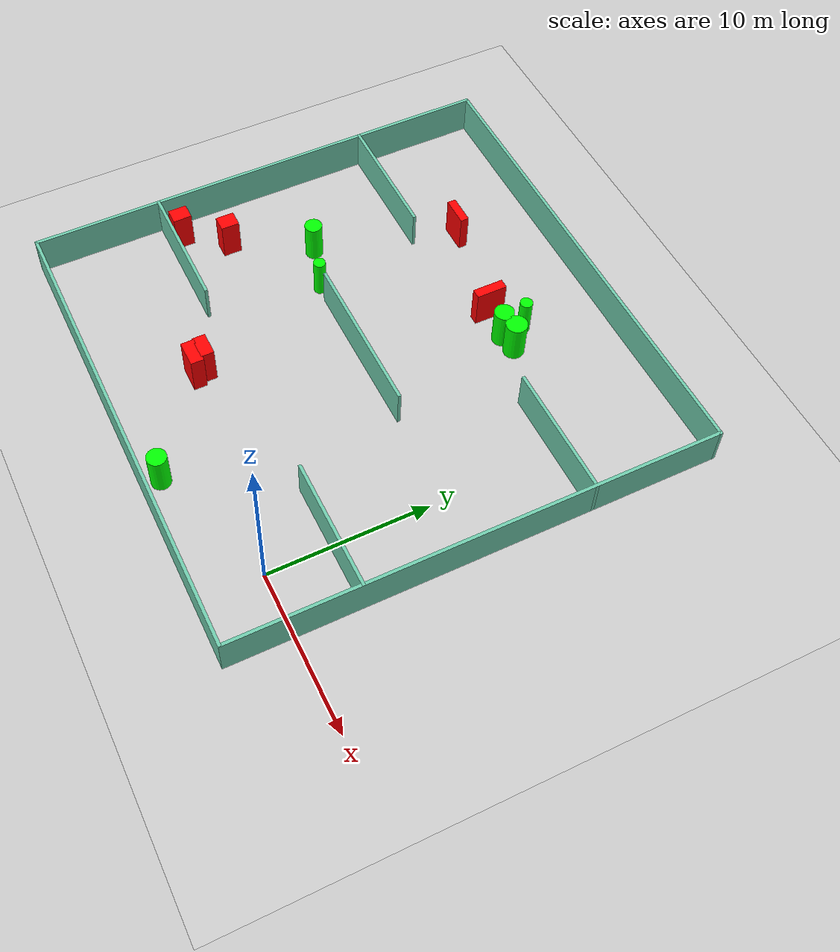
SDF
<sdf version="1.7">
 <world name="default">
  <light name="sun" type="directional">
   <pose>0 0 10 0 -0 0</pose>
   <diffuse>0.8 0.8 0.8 1</diffuse>
   <specular>0.2 0.2 0.2 1</specular>
   <attenuation>
    <range>1000</range>
    <constant>0.9</constant>
    <linear>0.01</linear>
    <quadratic>0.001</quadratic>
   </attenuation>
   <direction>-0.5 0.1 -0.9</direction>
   <spot><inner_angle>0</inner_angle><outer_angle>0</outer_angle><falloff>0</falloff></spot>
  </light>
  <model name="ground_plane">
   <static>1</static>
   <link name="link">
    <collision name="collision">
     <geometry><plane><normal>0 0 1</normal><size>100 100</size></plane></geometry>
     <surface>
      <contact><collide_bitmask>65535</collide_bitmask></contact>
      <friction><ode><mu>100</mu><mu2>50</mu2></ode></friction>
     </surface>
    </collision>
    <visual name="visual">
     <cast_shadows>0</cast_shadows>
     <geometry><plane><normal>0 0 1</normal><size>100 100</size></plane></geometry>
     <material>
      <script><uri>file://media/materials/scripts/gazebo.material</uri><name>Gazebo/Grey</name></script>
     </material>
    </visual>
   </link>
  </model>
  <gravity>0 0 -9.8</gravity>
  <magnetic_field>6e-06 2.3e-05 -4.2e-05</magnetic_field>
  <atmosphere type="adiabatic"/>
  <physics type="ode">
   <max_step_size>0.001</max_step_size>
   <real_time_factor>1</real_time_factor>
   <real_time_update_rate>1000</real_time_update_rate>
  </physics>
  <scene><ambient>0.4 0.4 0.4 1</ambient><background>0.7 0.7 0.7 1</background><shadows>1</shadows></scene>
  <spherical_coordinates>
   <surface_model>EARTH_WGS84</surface_model>
   <latitude_deg>0</latitude_deg>
   <longitude_deg>0</longitude_deg>
   <elevation>0</elevation>
   <heading_deg>0</heading_deg>
  </spherical_coordinates>
  <model name="my_base_walls">
   <link name="Wall_10">
    <collision name="Wall_10_Collision">
     <geometry><box><size>8.2 0.2 2.5</size></box></geometry>
     <pose>0 0 1.25 0 -0 0</pose>
    </collision>
    <visual name="Wall_10_Visual">
     <pose>0 0 1.25 0 -0 0</pose>
     <geometry><box><size>8.2 0.2 2.5</size></box></geometry>
     <material>
      <script><uri>file://media/materials/scripts/gazebo.material</uri><name>Gazebo/Grey</name></script>
      <ambient>0.435294 0.796078 0.67451 1</ambient>
     </material>
     <meta><layer>0</layer></meta>
    </visual>
    <pose>-11 -7 0 0 -0 0</pose>
   </link>
   <link name="Wall_12">
    <collision name="Wall_12_Collision">
     <geometry><box><size>8.2 0.2 2.5</size></box></geometry>
     <pose>0 0 1.25 0 -0 0</pose>
    </collision>
    <visual name="Wall_12_Visual">
     <pose>0 0 1.25 0 -0 0</pose>
     <geometry><box><size>8.2 0.2 2.5</size></box></geometry>
     <material>
      <script><uri>file://media/materials/scripts/gazebo.material</uri><name>Gazebo/Grey</name></script>
      <ambient>0.435294 0.796078 0.67451 1</ambient>
     </material>
     <meta><layer>0</layer></meta>
    </visual>
    <pose>-11 7 0 0 -0 0</pose>
   </link>
   <link name="Wall_14">
    <collision name="Wall_14_Collision">
     <geometry><box><size>8.2 0.2 2.5</size></box></geometry>
     <pose>0 0 1.25 0 -0 0</pose>
    </collision>
    <visual name="Wall_14_Visual">
     <pose>0 0 1.25 0 -0 0</pose>
     <geometry><box><size>8.2 0.2 2.5</size></box></geometry>
     <material>
      <script><uri>file://media/materials/scripts/gazebo.material</uri><name>Gazebo/Grey</name></script>
      <ambient>0.435294 0.796078 0.67451 1</ambient>
     </material>
     <meta><layer>0</layer></meta>
    </visual>
    <pose>11 7 0 0 -0 3.14159</pose>
   </link>
   <link name="Wall_16">
    <collision name="Wall_16_Collision">
     <geometry><box><size>10.2 0.2 2.5</size></box></geometry>
     <pose>0 0 1.25 0 -0 0</pose>
    </collision>
    <visual name="Wall_16_Visual">
     <pose>0 0 1.25 0 -0 0</pose>
     <geometry><box><size>10.2 0.2 2.5</size></box></geometry>
     <material>
      <script><uri>file://media/materials/scripts/gazebo.material</uri><name>Gazebo/Grey</name></script>
      <ambient>0.435294 0.796078 0.67451 1</ambient>
     </material>
     <meta><layer>0</layer></meta>
    </visual>
    <pose>0 0 0 0 -0 3.14159</pose>
   </link>
   <link name="Wall_2">
    <collision name="Wall_2_Collision">
     <geometry><box><size>30.2 0.2 2.5</size></box></geometry>
     <pose>0 0 1.25 0 -0 0</pose>
    </collision>
    <visual name="Wall_2_Visual">
     <pose>0 0 1.25 0 -0 0</pose>
     <geometry><box><size>30.2 0.2 2.5</size></box></geometry>
     <material>
      <script><uri>file://media/materials/scripts/gazebo.material</uri><name>Gazebo/Grey</name></script>
      <ambient>0.435294 0.796078 0.67451 1</ambient>
     </material>
     <meta><layer>0</layer></meta>
    </visual>
    <pose>0 -15 0 0 -0 3.14159</pose>
   </link>
   <link name="Wall_3">
    <collision name="Wall_3_Collision">
     <geometry><box><size>30.2 0.2 2.5</size></box></geometry>
     <pose>0 0 1.25 0 -0 0</pose>
    </collision>
    <visual name="Wall_3_Visual">
     <pose>0 0 1.25 0 -0 0</pose>
     <geometry><box><size>30.2 0.2 2.5</size></box></geometry>
     <material>
      <script><uri>file://media/materials/scripts/gazebo.material</uri><name>Gazebo/Grey</name></script>
      <ambient>0.435294 0.796078 0.67451 1</ambient>
     </material>
     <meta><layer>0</layer></meta>
    </visual>
    <pose>-15 0 0 0 -0 1.5708</pose>
   </link>
   <link name="Wall_4">
    <collision name="Wall_4_Collision">
     <geometry><box><size>30.2 0.2 2.5</size></box></geometry>
     <pose>0 0 1.25 0 -0 0</pose>
    </collision>
    <visual name="Wall_4_Visual">
     <pose>0 0 1.25 0 -0 0</pose>
     <geometry><box><size>30.2 0.2 2.5</size></box></geometry>
     <material>
      <script><uri>file://media/materials/scripts/gazebo.material</uri><name>Gazebo/Grey</name></script>
      <ambient>0.435294 0.796078 0.67451 1</ambient>
     </material>
     <meta><layer>0</layer></meta>
    </visual>
    <pose>0 15 0 0 -0 0</pose>
   </link>
   <link name="Wall_6">
    <collision name="Wall_6_Collision">
     <geometry><box><size>30.2 0.2 2.5</size></box></geometry>
     <pose>0 0 1.25 0 -0 0</pose>
    </collision>
    <visual name="Wall_6_Visual">
     <pose>0 0 1.25 0 -0 0</pose>
     <geometry><box><size>30.2 0.2 2.5</size></box></geometry>
     <material>
      <script><uri>file://media/materials/scripts/gazebo.material</uri><name>Gazebo/Grey</name></script>
      <ambient>0.435294 0.796078 0.67451 1</ambient>
     </material>
     <meta><layer>0</layer></meta>
    </visual>
    <pose>15 0 0 0 -0 1.5708</pose>
   </link>
   <link name="Wall_8">
    <collision name="Wall_8_Collision">
     <geometry><box><size>8.2 0.2 2.5</size></box></geometry>
     <pose>0 0 1.25 0 -0 0</pose>
    </collision>
    <visual name="Wall_8_Visual">
     <pose>0 0 1.25 0 -0 0</pose>
     <geometry><box><size>8.2 0.2 2.5</size></box></geometry>
     <material>
      <script><uri>file://media/materials/scripts/gazebo.material</uri><name>Gazebo/Grey</name></script>
      <ambient>0.435294 0.796078 0.67451 1</ambient>
     </material>
     <meta><layer>0</layer></meta>
    </visual>
    <pose>11 -7 0 0 -0 3.14159</pose>
   </link>
   <static>1</static>
   <pose>-11 11 0 0 -0 0</pose>
  </model>
  <model name="cylinder1">
   <static>1</static>
   <link name="link">
    <inertial>
     <mass>1</mass>
     <inertia><ixx>0.5</ixx><ixy>0</ixy><ixz>0</ixz><iyy>0.5</iyy><iyz>0</iyz><izz>1</izz></inertia>
    </inertial>
    <collision name="collision">
     <geometry><cylinder><radius>0.6082916704889512</radius><length>2.5</length></cylinder></geometry>
    </collision>
    <visual name="visual">
     <geometry><cylinder><radius>0.6082916704889512</radius><length>2.5</length></cylinder></geometry>
     <material>
      <ambient>0 1 0 1</ambient>
      <diffuse>0 1 0 1</diffuse>
      <specular>0.1 0.1 0.1 1</specular>
      <emissive>0 0 0 0</emissive>
     </material>
    </visual>
   </link>
   <pose>-8.74481914443671 19.354311901377862 1.25 0 0 0</pose>
  </model>
  <model name="cylinder2">
   <static>1</static>
   <link name="link">
    <inertial>
     <mass>1</mass>
     <inertia><ixx>0.5</ixx><ixy>0</ixy><ixz>0</ixz><iyy>0.5</iyy><iyz>0</iyz><izz>1</izz></inertia>
    </inertial>
    <collision name="collision">
     <geometry><cylinder><radius>0.5489122078826771</radius><length>2.5</length></cylinder></geometry>
    </collision>
    <visual name="visual">
     <geometry><cylinder><radius>0.5489122078826771</radius><length>2.5</length></cylinder></geometry>
     <material>
      <ambient>0 1 0 1</ambient>
      <diffuse>0 1 0 1</diffuse>
      <specular>0.1 0.1 0.1 1</specular>
      <emissive>0 0 0 0</emissive>
     </material>
    </visual>
   </link>
   <pose>-19.969951544026603 11.988273499306672 1.25 0 0 0</pose>
  </model>
  <model name="cylinder3">
   <static>1</static>
   <link name="link">
    <inertial>
     <mass>1</mass>
     <inertia><ixx>0.5</ixx><ixy>0</ixy><ixz>0</ixz><iyy>0.5</iyy><iyz>0</iyz><izz>1</izz></inertia>
    </inertial>
    <collision name="collision">
     <geometry><cylinder><radius>0.39114445023242833</radius><length>2.5</length></cylinder></geometry>
    </collision>
    <visual name="visual">
     <geometry><cylinder><radius>0.39114445023242833</radius><length>2.5</length></cylinder></geometry>
     <material>
      <ambient>0 1 0 1</ambient>
      <diffuse>0 1 0 1</diffuse>
      <specular>0.1 0.1 0.1 1</specular>
      <emissive>0 0 0 0</emissive>
     </material>
    </visual>
   </link>
   <pose>-8.818385246635172 20.889850699447866 1.25 0 0 0</pose>
  </model>
  <model name="cylinder4">
   <static>1</static>
   <link name="link">
    <inertial>
     <mass>1</mass>
     <inertia><ixx>0.5</ixx><ixy>0</ixy><ixz>0</ixz><iyy>0.5</iyy><iyz>0</iyz><izz>1</izz></inertia>
    </inertial>
    <collision name="collision">
     <geometry><cylinder><radius>0.379070777030169</radius><length>2.5</length></cylinder></geometry>
    </collision>
    <visual name="visual">
     <geometry><cylinder><radius>0.379070777030169</radius><length>2.5</length></cylinder></geometry>
     <material>
      <ambient>0 1 0 1</ambient>
      <diffuse>0 1 0 1</diffuse>
      <specular>0.1 0.1 0.1 1</specular>
      <emissive>0 0 0 0</emissive>
     </material>
    </visual>
   </link>
   <pose>-17.017674316954682 11.058275454314254 1.25 0 0 0</pose>
  </model>
  <model name="cylinder5">
   <static>1</static>
   <link name="link">
    <inertial>
     <mass>1</mass>
     <inertia><ixx>0.5</ixx><ixy>0</ixy><ixz>0</ixz><iyy>0.5</iyy><iyz>0</iyz><izz>1</izz></inertia>
    </inertial>
    <collision name="collision">
     <geometry><cylinder><radius>0.5967671325556281</radius><length>2.5</length></cylinder></geometry>
    </collision>
    <visual name="visual">
     <geometry><cylinder><radius>0.5967671325556281</radius><length>2.5</length></cylinder></geometry>
     <material>
      <ambient>0 1 0 1</ambient>
      <diffuse>0 1 0 1</diffuse>
      <specular>0.1 0.1 0.1 1</specular>
      <emissive>0 0 0 0</emissive>
     </material>
    </visual>
   </link>
   <pose>-7.960314919820966 -2.8872858553125678 1.25 0 0 0</pose>
  </model>
  <model name="cylinder6">
   <static>1</static>
   <link name="link">
    <inertial>
     <mass>1</mass>
     <inertia><ixx>0.5</ixx><ixy>0</ixy><ixz>0</ixz><iyy>0.5</iyy><iyz>0</iyz><izz>1</izz></inertia>
    </inertial>
    <collision name="collision">
     <geometry><cylinder><radius>0.6612179812362396</radius><length>2.5</length></cylinder></geometry>
    </collision>
    <visual name="visual">
     <geometry><cylinder><radius>0.6612179812362396</radius><length>2.5</length></cylinder></geometry>
     <material>
      <ambient>0 1 0 1</ambient>
      <diffuse>0 1 0 1</diffuse>
      <specular>0.1 0.1 0.1 1</specular>
      <emissive>0 0 0 0</emissive>
     </material>
    </visual>
   </link>
   <pose>-7.634653570820692 19.56858885349672 1.25 0 0 0</pose>
  </model>
  <model name="box1">
   <static>1</static>
   <link name="link">
    <inertial>
     <mass>1</mass>
     <inertia><ixx>0.083</ixx><ixy>0</ixy><ixz>0</ixz><iyy>0.083</iyy><iyz>0</iyz><izz>0.083</izz></inertia>
    </inertial>
    <collision name="collision">
     <geometry><box><size>0.9915480161803636 1.1719489812286845 2.5</size></box></geometry>
    </collision>
    <visual name="visual">
     <geometry><box><size>0.9915480161803636 1.1719489812286845 2.5</size></box></geometry>
     <material>
      <ambient>1 0 0 1</ambient>
      <diffuse>1 0 0 1</diffuse>
      <specular>0.1 0.1 0.1 1</specular>
      <emissive>0 0 0 0</emissive>
     </material>
    </visual>
    <sensor name="my_contact" type="contact">
     <contact><collision>box_collision</collision><topic>__default_topic__</topic></contact>
    </sensor>
   </link>
   <pose>-24.477326011708712 4.837214742430609 1.25 0 0 0</pose>
  </model>
  <model name="box2">
   <static>1</static>
   <link name="link">
    <inertial>
     <mass>1</mass>
     <inertia><ixx>0.083</ixx><ixy>0</ixy><ixz>0</ixz><iyy>0.083</iyy><iyz>0</iyz><izz>0.083</izz></inertia>
    </inertial>
    <collision name="collision">
     <geometry><box><size>1.7902941494245208 0.5299355928343211 2.5</size></box></geometry>
    </collision>
    <visual name="visual">
     <geometry><box><size>1.7902941494245208 0.5299355928343211 2.5</size></box></geometry>
     <material>
      <ambient>1 0 0 1</ambient>
      <diffuse>1 0 0 1</diffuse>
      <specular>0.1 0.1 0.1 1</specular>
      <emissive>0 0 0 0</emissive>
     </material>
    </visual>
    <sensor name="my_contact" type="contact">
     <contact><collision>box_collision</collision><topic>__default_topic__</topic></contact>
    </sensor>
   </link>
   <pose>-17.232910099889764 20.72790014398495 1.25 0 0 0</pose>
  </model>
  <model name="box3">
   <static>1</static>
   <link name="link">
    <inertial>
     <mass>1</mass>
     <inertia><ixx>0.083</ixx><ixy>0</ixy><ixz>0</ixz><iyy>0.083</iyy><iyz>0</iyz><izz>0.083</izz></inertia>
    </inertial>
    <collision name="collision">
     <geometry><box><size>1.6373843537991009 0.8215169589949238 2.5</size></box></geometry>
    </collision>
    <visual name="visual">
     <geometry><box><size>1.6373843537991009 0.8215169589949238 2.5</size></box></geometry>
     <material>
      <ambient>1 0 0 1</ambient>
      <diffuse>1 0 0 1</diffuse>
      <specular>0.1 0.1 0.1 1</specular>
      <emissive>0 0 0 0</emissive>
     </material>
    </visual>
    <sensor name="my_contact" type="contact">
     <contact><collision>box_collision</collision><topic>__default_topic__</topic></contact>
    </sensor>
   </link>
   <pose>-13.927266146838509 1.551659007401014 1.25 0 0 0</pose>
  </model>
  <model name="box4">
   <static>1</static>
   <link name="link">
    <inertial>
     <mass>1</mass>
     <inertia><ixx>0.083</ixx><ixy>0</ixy><ixz>0</ixz><iyy>0.083</iyy><iyz>0</iyz><izz>0.083</izz></inertia>
    </inertial>
    <collision name="collision">
     <geometry><box><size>0.5969481881374266 1.9339658026292084 2.5</size></box></geometry>
    </collision>
    <visual name="visual">
     <geometry><box><size>0.5969481881374266 1.9339658026292084 2.5</size></box></geometry>
     <material>
      <ambient>1 0 0 1</ambient>
      <diffuse>1 0 0 1</diffuse>
      <specular>0.1 0.1 0.1 1</specular>
      <emissive>0 0 0 0</emissive>
     </material>
    </visual>
    <sensor name="my_contact" type="contact">
     <contact><collision>box_collision</collision><topic>__default_topic__</topic></contact>
    </sensor>
   </link>
   <pose>-10.716357158818388 19.445414573244193 1.25 0 0 0</pose>
  </model>
  <model name="box5">
   <static>1</static>
   <link name="link">
    <inertial>
     <mass>1</mass>
     <inertia><ixx>0.083</ixx><ixy>0</ixy><ixz>0</ixz><iyy>0.083</iyy><iyz>0</iyz><izz>0.083</izz></inertia>
    </inertial>
    <collision name="collision">
     <geometry><box><size>1.4638458176526292 0.8112034509195577 2.5</size></box></geometry>
    </collision>
    <visual name="visual">
     <geometry><box><size>1.4638458176526292 0.8112034509195577 2.5</size></box></geometry>
     <material>
      <ambient>1 0 0 1</ambient>
      <diffuse>1 0 0 1</diffuse>
      <specular>0.1 0.1 0.1 1</specular>
      <emissive>0 0 0 0</emissive>
     </material>
    </visual>
    <sensor name="my_contact" type="contact">
     <contact><collision>box_collision</collision><topic>__default_topic__</topic></contact>
    </sensor>
   </link>
   <pose>-14.098181339034312 2.2891282231500796 1.25 0 0 0</pose>
  </model>
  <model name="box6">
   <static>1</static>
   <link name="link">
    <inertial>
     <mass>1</mass>
     <inertia><ixx>0.083</ixx><ixy>0</ixy><ixz>0</ixz><iyy>0.083</iyy><iyz>0</iyz><izz>0.083</izz></inertia>
    </inertial>
    <collision name="collision">
     <geometry><box><size>0.9950932348065982 1.1554906537782763 2.5</size></box></geometry>
    </collision>
    <visual name="visual">
     <geometry><box><size>0.9950932348065982 1.1554906537782763 2.5</size></box></geometry>
     <material>
      <ambient>1 0 0 1</ambient>
      <diffuse>1 0 0 1</diffuse>
      <specular>0.1 0.1 0.1 1</specular>
      <emissive>0 0 0 0</emissive>
     </material>
    </visual>
    <sensor name="my_contact" type="contact">
     <contact><collision>box_collision</collision><topic>__default_topic__</topic></contact>
    </sensor>
   </link>
   <pose>-22.62205260877247 7.298130340314982 1.25 0 0 0</pose>
  </model>
 </world>
</sdf>
